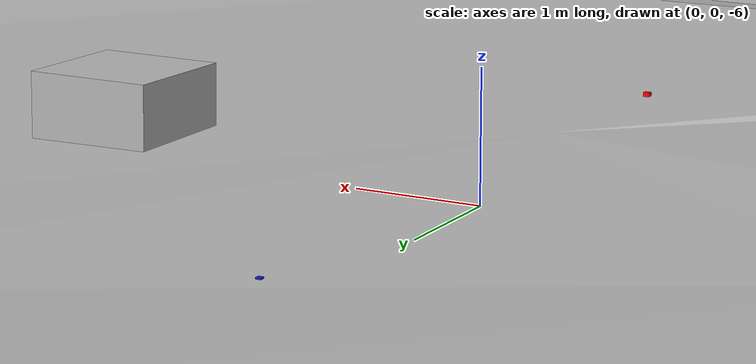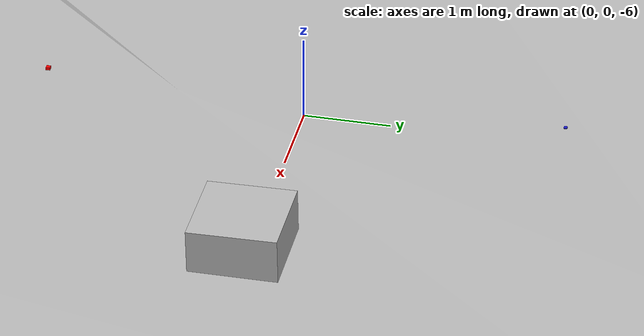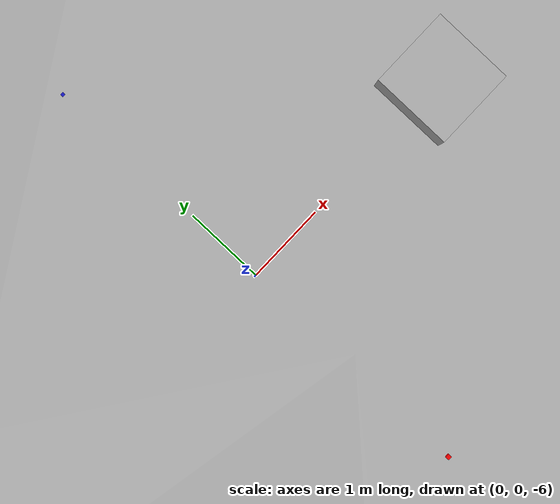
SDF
<?xml version="1.0"?>
<sdf version="1.6">
    <world name='urjc_excavation_world'>

        <!-- Physis Engine Configuration -->
        <physics name="5ms" type="ignored">
            <max_step_size>0.005</max_step_size>
            <real_time_factor>1.0</real_time_factor>
        </physics>

        <!-- Generic Plugins -->
        <plugin
            filename="gz-sim-physics-system"
            name="gz::sim::systems::Physics">
        </plugin>
        <plugin
            filename="gz-sim-user-commands-system"
            name="gz::sim::systems::UserCommands">
        </plugin>
        <plugin
            filename="gz-sim-scene-broadcaster-system"
            name="gz::sim::systems::SceneBroadcaster">
        </plugin>

        <!-- Sensors plugin -->
        <plugin
          filename="gz-sim-sensors-system"
          name="gz::sim::systems::Sensors">
          <render_engine>ogre2</render_engine>
        </plugin>
        <plugin
          filename="gz-sim-imu-system"
          name="gz::sim::systems::Imu">
        </plugin>

        <!-- GPS plugin -->
        <plugin
            filename="gz-sim-navsat-system"
            name="gz::sim::systems::NavSat">
        </plugin>

        <!-- Set the coordinates for the world origin -->
        <spherical_coordinates>
            <surface_model>EARTH_WGS84</surface_model>
            <world_frame_orientation>ENU</world_frame_orientation>
            <latitude_deg>40.284796</latitude_deg>
            <longitude_deg>-3.821407</longitude_deg>
            <elevation>675</elevation>
            <heading_deg>0</heading_deg>
        </spherical_coordinates>

        <!-- Gravity configuration -->
        <gravity>0.0 0.0 -9.8</gravity>

        <!-- Scene configuration -->
        <scene>
            <ambient>0.4 0.4 0.4 1</ambient>
            <background>0.7 0.7 0.7 1</background>
            <shadows>false</shadows>
            <grid>false</grid>
            <origin_visual>false</origin_visual>
        </scene>

        <!-- Sun Light configuration -->
        <light name='sun'
            type='directional'>
            <cast_shadows>0</cast_shadows>
            <pose>0 0 10000 0 0 0</pose>
            <diffuse>0.8 0.8 0.8 1</diffuse>
            <specular>0.2 0.2 0.2 1</specular>
            <attenuation>
                <range>1000</range>
                <constant>0.9</constant>
                <linear>0.01</linear>
                <quadratic>0.001</quadratic>
            </attenuation>
            <direction>-0.5 0.1 -0.9</direction>
        </light>

        <!-- Include the urjc_excavation model -->
        <include>
            <uri>model://urjc_excavation</uri>
        </include>
        <include>
            <uri>model://red_cube</uri>
            <pose>0 -3 -5.79 0.04 -0.01 0</pose>
        </include>
        <include>
            <uri>model://green_cube</uri>
            <pose>3 0 -5.81 0.02 0 0</pose>
        </include>
        <include>
            <uri>model://blue_cube</uri>
            <pose>0 3 -5.75 0 0 0 </pose>
        </include>
    </world>
</sdf>

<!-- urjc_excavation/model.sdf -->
<sdf version="1.5">
  <model name="ground_plane">
    <static>true</static>
    <link name="ground_plane_link">
      <collision name="collision">
        <geometry>
          <mesh>
            <uri>model://urjc_excavation/meshes/URJC_excavation.stl</uri>
          </mesh>
        </geometry>
          <surface>
            <friction>
              <ode>
                <mu>0.9000000</mu>
                <mu2>0.1000000</mu2>
                <fdir1>0.000000 0.000000 1.000000</fdir1>
              </ode>
            </friction>
            <bounce>
              <restitution_coefficient>0.000000</restitution_coefficient>
              <threshold>100000.000000</threshold>
            </bounce>
            <contact>
              <ode>
                <soft_cfm>9.000000</soft_cfm>
                <soft_erp>9.000000</soft_erp>
                <kp>10000.000000</kp>
                <kd>1.000000</kd>
                <max_vel>100.000000</max_vel>
                <min_depth>0.001000</min_depth>
              </ode>
            </contact>
          </surface>
      </collision>
      <visual name="visual">
        <geometry>
          <mesh>
            <uri>model://urjc_excavation/meshes/URJC_excavation.dae</uri>
          </mesh>
        </geometry>
      </visual>
    </link>
  </model>
</sdf>

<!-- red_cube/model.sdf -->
<sdf version="1.6">
  <model name="red_cube">
    <static>false</static>
    <link name="link">
      <inertial>
        <mass>0.100</mass>
        <inertia>
          <ixx>0.0000417</ixx>
          <ixy>0</ixy>
          <ixz>0</ixz>
          <iyy>0.0000417</iyy>
          <iyz>0</iyz>
          <izz>0.0000417</izz>
        </inertia>
      </inertial>
      <collision name="collision">
        <geometry>
          <box>
            <size>0.05 0.05 0.05</size>
          </box>
        </geometry>
        <surface>
          <friction>
            <ode>
              <mu>5.0</mu>
              <mu2>5.0</mu2>
              <slip1>0.0001</slip1>
              <slip2>0.0001</slip2>
            </ode>
          </friction>
          <contact>
            <ode>
              <kp>1e5</kp>
              <kd>10</kd>
              <max_vel>0.1</max_vel>
              <min_depth>0.001</min_depth>
            </ode>
          </contact>
        </surface>
      </collision>
      <visual name="visual">
        <geometry>
          <box>
            <size>0.05 0.05 0.05</size>
          </box>
        </geometry>
        <material>
          <ambient>1.0 0.0 0.0 1</ambient>
          <diffuse>1.0 0.0 0.0 1</diffuse>
          <specular>0.5 0.5 0.5 1</specular>
        </material>
      </visual>
    </link>
  </model>
</sdf>

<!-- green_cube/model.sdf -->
<sdf version="1.4">
  <model name="green_cube">
    <pose>0 0 0.0 0 0 0</pose>
    <static>false</static>
    <link name="cube_link">
      <inertial>
        <mass>0.001</mass>
        <inertia> <!-- inertias are tricky to compute -->
          <!-- http://gazebosim.org/tutorials?tut=inertia&cat=build_robot -->
          <ixx>0.000083</ixx>       <!-- for a box: ixx = 0.083 * mass * (y*y + z*z) -->
          <ixy>0.0</ixy>         <!-- for a box: ixy = 0 -->
          <ixz>0.0</ixz>         <!-- for a box: ixz = 0 -->
          <iyy>0.000083</iyy>       <!-- for a box: iyy = 0.083 * mass * (x*x + z*z) -->
          <iyz>0.0</iyz>         <!-- for a box: iyz = 0 -->
          <izz>0.000083</izz>       <!-- for a box: izz = 0.083 * mass * (x*x + y*y) -->
        </inertia>
      </inertial>
      <collision name="collision">
        <geometry>
          <box>
            <size>1 1 1</size>
          </box>
        </geometry>
      </collision>
      <visual name="visual">
        <geometry>
          <box>
            <size>1 1 1</size>
          </box>
        </geometry>
      </visual>
    </link>
    <gazebo reference="cube_link">
      <material>Gazebo/Green</material>
    </gazebo>
  </model>
</sdf>

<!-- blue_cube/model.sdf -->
<sdf version="1.9">
  <model name="blue_cube">
    <pose>0 0 0 0 0 0</pose>
    <link name="link">
      <inertial><mass>0.1</mass><inertia><ixx>2.13e-5</ixx><iyy>2.13e-5</iyy><izz>2.13e-5</izz></inertia></inertial>
      <collision name="collision"><geometry><box><size>0.04 0.04 0.04</size></box></geometry><surface><friction><ode><mu>0.6</mu><mu2>0.6</mu2></ode></friction></surface></collision>
      <visual name="visual"><geometry><box><size>0.04 0.04 0.04</size></box></geometry><material><ambient>0.1 0.1 0.8 1</ambient><diffuse>0.1 0.1 0.8 1</diffuse></material></visual>
    </link>
  </model>
</sdf>
